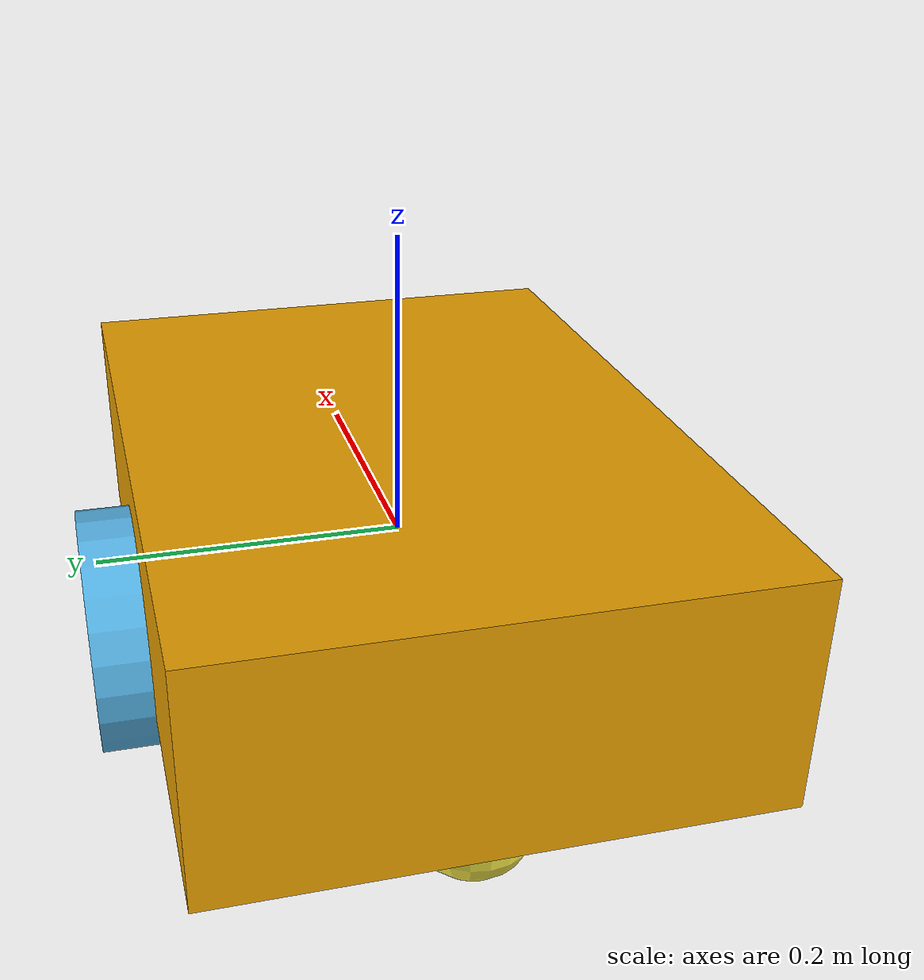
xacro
<?xml version="1.0"?>

<robot xmlns:xacro="http://www.ros.org/wiki/xacro"
       name="ekf_robot">

  <!-- Base -->

  <link name="base_link">

    <visual>
      <geometry>
        <box size="0.5 0.35 0.15"/>
      </geometry>
    </visual>

    <collision>
      <geometry>
        <box size="0.5 0.35 0.15"/>
      </geometry>
    </collision>

    <inertial>
      <mass value="10.0"/>
      <origin xyz="0 0 0"/>
      <inertia
        ixx="0.12"
        ixy="0.0"
        ixz="0.0"
        iyy="0.20"
        iyz="0.0"
        izz="0.25"/>
    </inertial>

  </link>

  <!-- Left wheel -->

  <link name="left_wheel">

    <visual>
      <geometry>
        <cylinder radius="0.08" length="0.04"/>
      </geometry>

      <origin rpy="1.5708 0 0"/>
    </visual>

    <collision>
      <geometry>
        <cylinder radius="0.08" length="0.04"/>
      </geometry>

      <origin rpy="1.5708 0 0"/>
    </collision>

    <inertial>
      <mass value="1.0"/>
      <inertia
        ixx="0.01"
        ixy="0"
        ixz="0"
        iyy="0.01"
        iyz="0"
        izz="0.01"/>
    </inertial>

  </link>

  <joint name="left_wheel_joint"
         type="continuous">

    <parent link="base_link"/>
    <child link="left_wheel"/>

    <origin xyz="0 0.19 -0.05"/>

    <axis xyz="0 1 0"/>

  </joint>

  <!-- Right wheel -->

  <link name="right_wheel">

    <visual>
      <geometry>
        <cylinder radius="0.08" length="0.04"/>
      </geometry>

      <origin rpy="1.5708 0 0"/>
    </visual>

    <collision>
      <geometry>
        <cylinder radius="0.08" length="0.04"/>
      </geometry>

      <origin rpy="1.5708 0 0"/>
    </collision>

    <inertial>
      <mass value="1.0"/>
      <inertia
        ixx="0.01"
        ixy="0"
        ixz="0"
        iyy="0.01"
        iyz="0"
        izz="0.01"/>
    </inertial>

  </link>

  <joint name="right_wheel_joint"
         type="continuous">

    <parent link="base_link"/>
    <child link="right_wheel"/>

    <origin xyz="0 -0.19 -0.05"/>

    <axis xyz="0 1 0"/>

  </joint>

  <!-- Caster -->

  <link name="caster_link">

    <visual>
      <geometry>
        <sphere radius="0.04"/>
      </geometry>
    </visual>

    <collision>
      <geometry>
        <sphere radius="0.04"/>
      </geometry>
    </collision>

    <inertial>
      <mass value="0.2"/>
      <inertia
        ixx="0.001"
        ixy="0"
        ixz="0"
        iyy="0.001"
        iyz="0"
        izz="0.001"/>
    </inertial>

  </link>

  <joint name="caster_joint"
         type="fixed">

    <parent link="base_link"/>
    <child link="caster_link"/>

    <origin xyz="-0.18 0 -0.10"/>

  </joint>

  <!-- IMU -->

  <link name="imu_link"/>

  <joint name="imu_joint"
         type="fixed">

    <parent link="base_link"/>
    <child link="imu_link"/>

    <origin xyz="0 0 0.1"/>

  </joint>

  <!-- Differential Drive Plugin -->

  <gazebo>

    <plugin
      name="diff_drive"
      filename="libgazebo_ros_diff_drive.so">

      <ros>
        <namespace>/</namespace>
      </ros>

      <update_rate>50</update_rate>

      <left_joint>
        left_wheel_joint
      </left_joint>

      <right_joint>
        right_wheel_joint
      </right_joint>

      <wheel_separation>0.38</wheel_separation>

      <wheel_diameter>0.16</wheel_diameter>

      <max_wheel_torque>20</max_wheel_torque>

      <max_wheel_acceleration>1.0</max_wheel_acceleration>

      <odometry_source>encoder</odometry_source>

      <command_topic>cmd_vel</command_topic>

      <odometry_topic>odom</odometry_topic>

      <odometry_frame>odom</odometry_frame>

      <robot_base_frame>base_link</robot_base_frame>

      <publish_odom>true</publish_odom>

      <publish_odom_tf>true</publish_odom_tf>

      <publish_wheel_tf>true</publish_wheel_tf>

    </plugin>

  </gazebo>

  <!-- IMU Sensor -->

  <gazebo reference="imu_link">

    <sensor
      name="imu_sensor"
      type="imu">

      <always_on>true</always_on>

      <update_rate>100</update_rate>

      <visualize>false</visualize>

      <imu>

        <angular_velocity>

          <x>
            <noise type="gaussian">
              <mean>0.0</mean>
              <stddev>0.01</stddev>
            </noise>
          </x>

          <y>
            <noise type="gaussian">
              <mean>0.0</mean>
              <stddev>0.01</stddev>
            </noise>
          </y>

          <z>
            <noise type="gaussian">
              <mean>0.005</mean>
              <stddev>0.0082</stddev>
            </noise>
          </z>

        </angular_velocity>

        <linear_acceleration>

          <x>
            <noise type="gaussian">
              <mean>0.0</mean>
              <stddev>0.05</stddev>
            </noise>
          </x>

          <y>
            <noise type="gaussian">
              <mean>0.0</mean>
              <stddev>0.05</stddev>
            </noise>
          </y>

          <z>
            <noise type="gaussian">
              <mean>0.0</mean>
              <stddev>0.05</stddev>
            </noise>
          </z>

        </linear_acceleration>

      </imu>

      <plugin
        name="imu_plugin"
        filename="libgazebo_ros_imu_sensor.so">

        <ros>
          <namespace>/</namespace>
          <remapping>~/out:=imu</remapping>
        </ros>

        <frame_name>imu_link</frame_name>

      </plugin>

    </sensor>

  </gazebo>

</robot>
